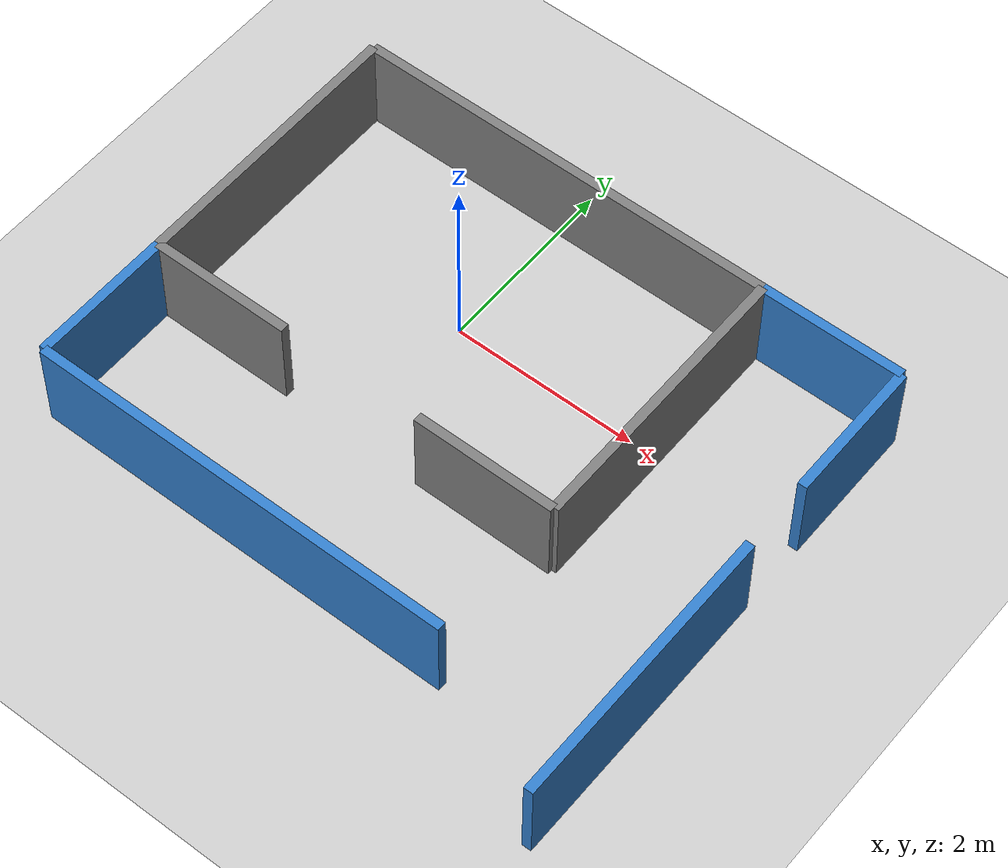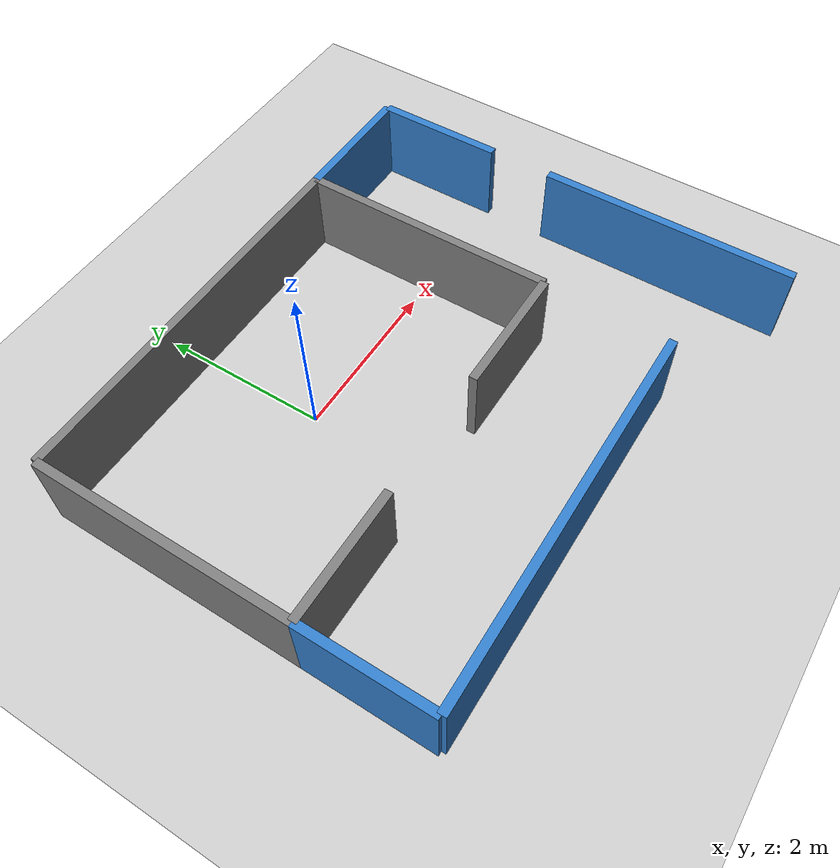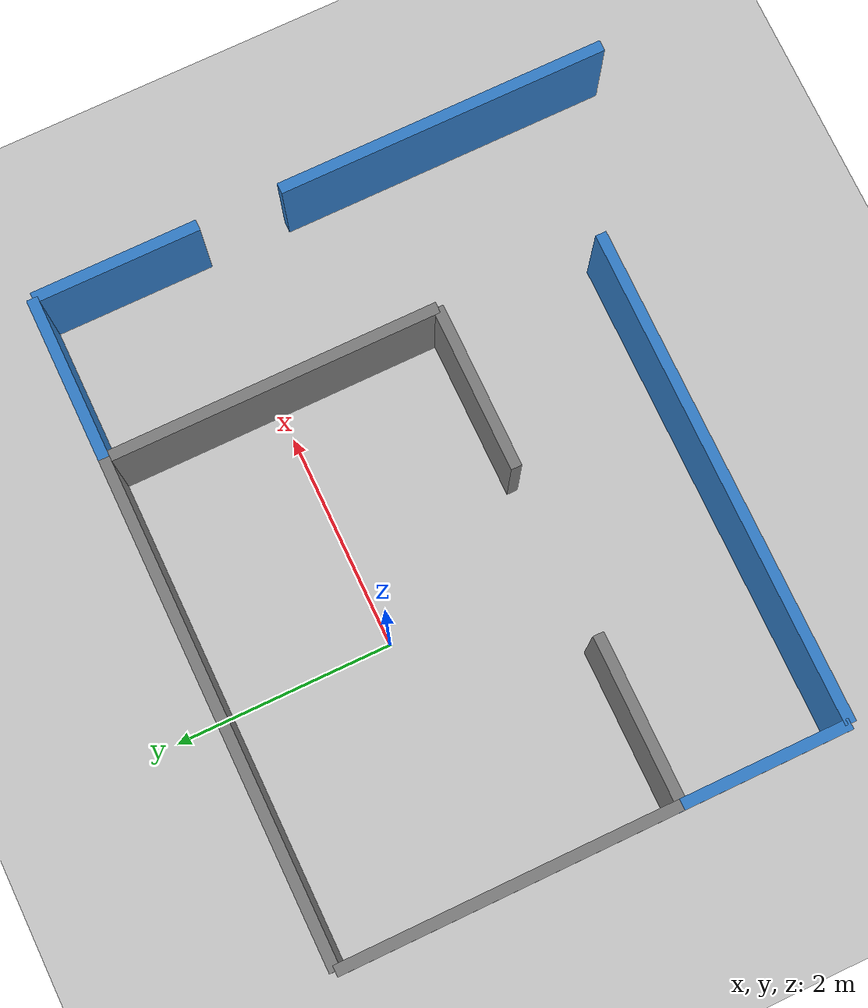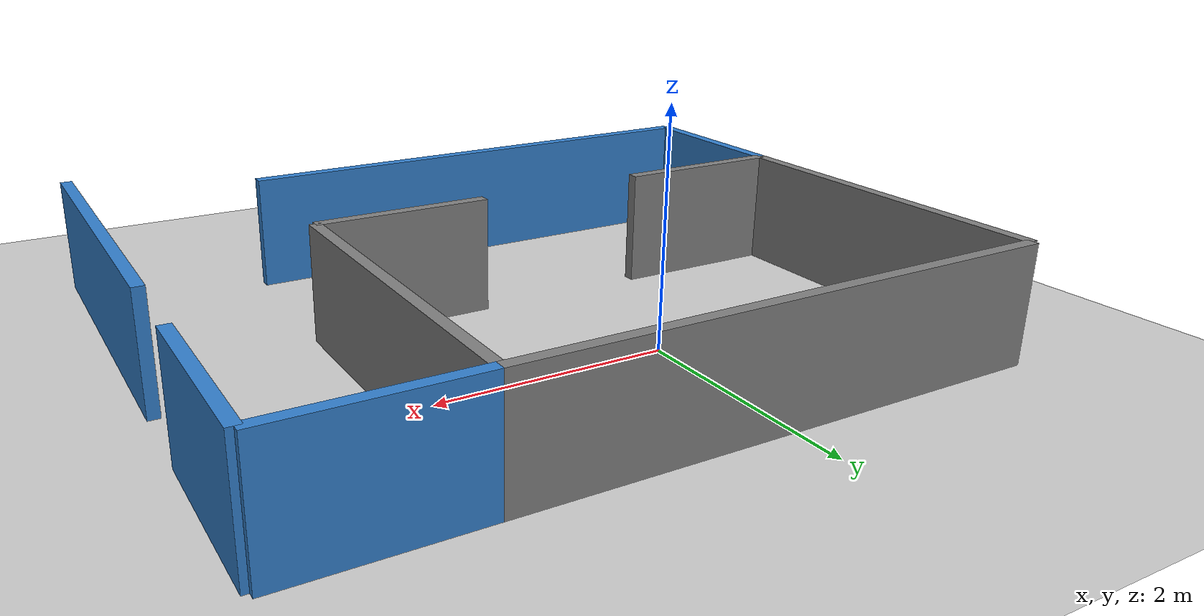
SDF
<?xml version="1.0" ?>
<sdf version="1.8">
  <world name="project1_env">
    <scene>
	<ambient>0.8 0.8 0.8 1.0</ambient> <background>0.8 0.8 0.8 1.0</background>
        <shadows>false</shadows>
    </scene>
    <!-- Required GZ Sim Plugins -->
    <physics name="1ms" type="ignored">
      <max_step_size>0.001</max_step_size>
      <real_time_factor>1.0</real_time_factor>
    </physics>
    <plugin filename="ignition-gazebo-physics-system" name="ignition::gazebo::systems::Physics"/>
    <plugin filename="ignition-gazebo-user-commands-system" name="ignition::gazebo::systems::UserCommands"/>
    <plugin filename="ignition-gazebo-scene-broadcaster-system" name="ignition::gazebo::systems::SceneBroadcaster"/>

    <!-- Light & Ground -->
    <light type="directional" name="sun">
      <cast_shadows>true</cast_shadows>
      <pose>0 0 10 0 0 0</pose>
      <diffuse>0.8 0.8 0.8 1</diffuse>
      <specular>0.2 0.2 0.2 1</specular>
      <direction>-0.5 0.1 -0.9</direction>
    </light>
    <model name="ground_plane">
      <static>true</static>
      <link name="link">
        <collision name="collision">
          <geometry><plane><normal>0 0 1</normal><size>100 100</size></plane></geometry>
        </collision>
        <visual name="visual">
          <geometry><plane><normal>0 0 1</normal><size>100 100</size></plane></geometry>
          <material><ambient>0.8 0.8 0.8 1</ambient></material>
        </visual>
      </link>
    </model>

    <!-- Assignment Environment Walls -->
    <model name="project1_walls">
      <static>true</static>

      <!-- ROOM: 15ft (4.57m) x 10ft (3.05m) -->
      <!-- North Wall -->
      <link name="room_north">
        <pose>0 1.525 0.5 0 0 0</pose>
        <visual name="v"><geometry><box><size>4.57 0.1 1.0</size></box></geometry><material><ambient>0.5 0.5 0.5 1</ambient></material></visual>
        <collision name="c"><geometry><box><size>4.57 0.1 1.0</size></box></geometry></collision>
      </link>
      <!-- West Wall -->
      <link name="room_west">
        <pose>-2.285 0 0.5 0 0 0</pose>
        <visual name="v"><geometry><box><size>0.1 3.05 1.0</size></box></geometry><material><ambient>0.5 0.5 0.5 1</ambient></material></visual>
        <collision name="c"><geometry><box><size>0.1 3.05 1.0</size></box></geometry></collision>
      </link>
      <!-- East Wall -->
      <link name="room_east">
        <pose>2.285 0 0.5 0 0 0</pose>
        <visual name="v"><geometry><box><size>0.1 3.05 1.0</size></box></geometry><material><ambient>0.5 0.5 0.5 1</ambient></material></visual>
        <collision name="c"><geometry><box><size>0.1 3.05 1.0</size></box></geometry></collision>
      </link>

      <!-- South Wall with 5ft (1.52m) Middle Doorway -->
      <link name="room_south_left">
        <pose>-1.525 -1.525 0.5 0 0 0</pose>
        <visual name="v"><geometry><box><size>1.52 0.1 1.0</size></box></geometry><material><ambient>0.5 0.5 0.5 1</ambient></material></visual>
        <collision name="c"><geometry><box><size>1.52 0.1 1.0</size></box></geometry></collision>
      </link>
      <link name="room_south_right">
        <pose>1.525 -1.525 0.5 0 0 0</pose>
        <visual name="v"><geometry><box><size>1.52 0.1 1.0</size></box></geometry><material><ambient>0.5 0.5 0.5 1</ambient></material></visual>
        <collision name="c"><geometry><box><size>1.52 0.1 1.0</size></box></geometry></collision>
      </link>

      <!-- HALLWAY: 5ft (1.52m) wide, backwards L-shape -->
      <!-- Hallway Outer South Wall (15ft / 4.57m long branch) -->
      <link name="hall_outer_south">
        <pose>0 -3.045 0.5 0 0 0</pose>
        <visual name="v"><geometry><box><size>4.57 0.1 1.0</size></box></geometry><material><ambient>0.2 0.5 0.8 1</ambient></material></visual>
        <collision name="c"><geometry><box><size>4.57 0.1 1.0</size></box></geometry></collision>
      </link>

      <!-- Hallway Outer East Wall (20ft / 6.10m long branch) -->
      <!-- Adjusted to include a 5ft doorway 5ft from the end -->
      <link name="hall_outer_east_top">
        <pose>3.805 0.76 0.5 0 0 0</pose>
        <visual name="v"><geometry><box><size>0.1 1.52 1.0</size></box></geometry><material><ambient>0.2 0.5 0.8 1</ambient></material></visual>
        <collision name="c"><geometry><box><size>0.1 1.52 1.0</size></box></geometry></collision>
      </link>
      <link name="hall_outer_east_bottom">
        <pose>3.805 -2.28 0.5 0 0 0</pose>
        <visual name="v"><geometry><box><size>0.1 3.05 1.0</size></box></geometry><material><ambient>0.2 0.5 0.8 1</ambient></material></visual>
        <collision name="c"><geometry><box><size>0.1 3.05 1.0</size></box></geometry></collision>
      </link>

      <!-- Hallway Caps (Closing the ends) -->
      <link name="hall_cap_southwest">
        <pose>-2.285 -2.285 0.5 0 0 0</pose>
        <visual name="v"><geometry><box><size>0.1 1.52 1.0</size></box></geometry><material><ambient>0.2 0.5 0.8 1</ambient></material></visual>
        <collision name="c"><geometry><box><size>0.1 1.52 1.0</size></box></geometry></collision>
      </link>
      <link name="hall_cap_northeast">
        <pose>3.045 1.525 0.5 0 0 0</pose>
        <visual name="v"><geometry><box><size>1.52 0.1 1.0</size></box></geometry><material><ambient>0.2 0.5 0.8 1</ambient></material></visual>
        <collision name="c"><geometry><box><size>1.52 0.1 1.0</size></box></geometry></collision>
      </link>
    </model>
  </world>
</sdf>
